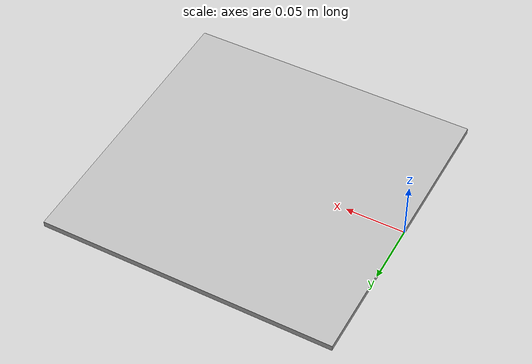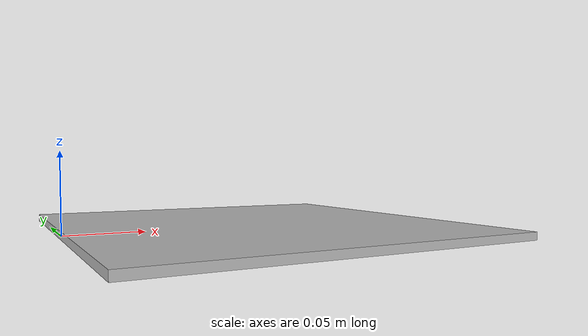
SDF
<?xml version="1.0" ?><sdf version="1.5">
  <model name="Marker16">
    <static>true</static>
    <link name="link">
      <pose>0 0 0 0 1.5708 0</pose>
      <visual name="visual">
        <geometry>
          <mesh>
            <uri>model://marker16/meshes/Marker16.dae</uri>
          <scale>0.5 0.5 0.5</scale></mesh>
        </geometry>
      </visual>
    </link>
  </model>
</sdf>
